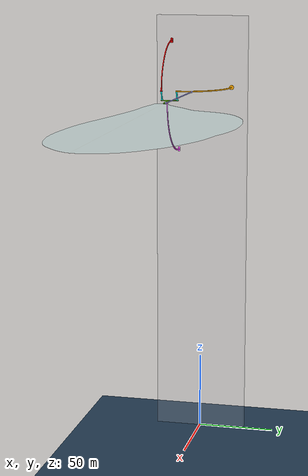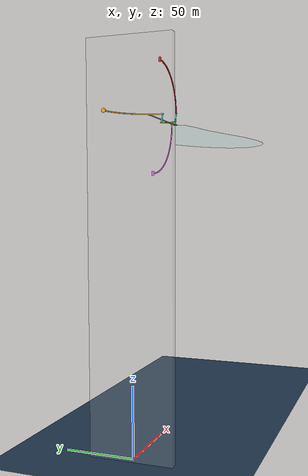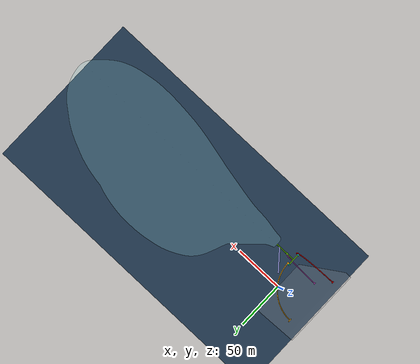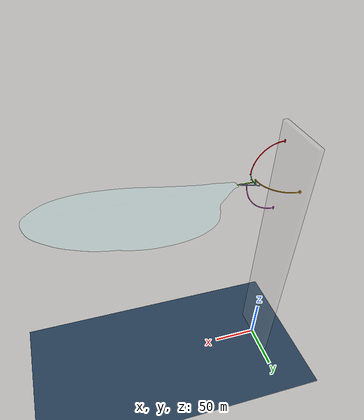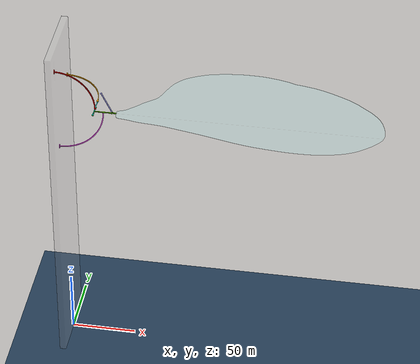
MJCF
<?xml version="1.0" ?>
<mujoco>
  <compiler coordinate="global" angle="radian"/>
  <option gravity="0.0 0.0 -9.81" timestep="0.005"/>
  <asset>
    <mesh file="./mesh_files/mount_plate.stl"/>
    <mesh file="./mesh_files/sla.stl"/>
    <mesh file="./mesh_files/scu.stl"/>
    <mesh file="./mesh_files/pwp.stl"/>
    <mesh file="./mesh_files/mu1.stl"/>
    <mesh file="./mesh_files/mu1.stl"/>
    <mesh file="./mesh_files/ax1_and_vein.stl"/>
    <mesh file="./mesh_files/wing.stl"/>
    <mesh file="./mesh_files/ax34.stl"/>
    <material name="color_0" rgba="1.00 0.33 1.00 1.00"/>
    <material name="color_1" rgba="0.00 1.00 1.00 1.00"/>
    <material name="color_2" rgba="0.80 0.80 0.80 0.20"/>
    <material name="color_3" rgba="0.67 0.67 1.00 1.00"/>
    <material name="color_4" rgba="1.00 0.67 0.00 1.00"/>
    <material name="color_5" rgba="1.00 0.00 0.00 1.00"/>
    <material name="color_6" rgba="0.33 0.67 0.00 1.00"/>
    <material name="color_7" rgba="0.67 1.00 1.00 0.20"/>
    <texture name="grid" type="2d" builtin="checker" width="512" height="512" rgb1="0.1 0.2 0.3" rgb2="0.2 0.3 0.4"/>
    <material name="grid" texture="grid" texrepeat="10 10" texuniform="false" reflectance=".2"/>
  </asset>
  <worldbody>
    <geom name="floor" type="plane" material="grid" condim="3" size="2800.0000000000027 2800.0000000000027 0.05"/>
    <light name="spotlight" mode="targetbodycom" diffuse="0.8 0.8 0.8" specular="0.2 0.2 0.2" pos="368.116807111083 74.96102133503551 420.00000000000045" cutoff="560.0000000000006" target="mount_plate_001"/>
    <body name="mount_plate_001" pos="0.0 0.0 0.0" quat="1.0 0.0 0.0 0.0">
      <geom name="mount_plate_001_mesh" type="mesh" mesh="mount_plate" material="color_2" pos="0.0 0.0 0.0" quat="1.0 0.0 0.0 0.0"/>
      <freejoint name="mount_plate_001_joint"/>
      <body name="sla_001" pos="-0.500000000000266 19.99999999379196 233.72669307513883" quat="6.317222293885728e-09 0.7071067855762254 -0.7071067767968696 6.317220958106056e-09">
        <geom name="sla_001_mesh" type="mesh" mesh="sla" material="color_4" pos="-0.500000000000266 19.99999999379196 233.72669307513883" quat="6.317222293885728e-09 0.7071067855762254 -0.7071067767968696 6.317220958106056e-09"/>
        <joint name="sla_001_joint" type="hinge" pos="-0.500000000000266 19.99999999379196 233.72669307513883" axis="1.0 0.0 0.0" limited="false" springref="0"/>
        <body name="mu1_002" pos="29.497664242383156 -10.005097269695945 233.0351722957893" quat="0.5743397002796597 -0.00014083788730561743 0.8186170527637645 -9.885205160024596e-05">
          <geom name="mu1_002_mesh" type="mesh" mesh="mu1" material="color_1" pos="29.497664242383156 -10.005097269695945 233.0351722957893" quat="0.5743397002796597 -0.00014083788730561743 0.8186170527637645 -9.885205160024596e-05"/>
          <joint name="mu1_002_joint_axis1" type="hinge" pos="29.497664242383156 -10.005097269695945 233.0351722957893" axis="1.0 1.2415884083011619e-08 -2.222044605562574e-15" limited="false" springref="0" stiffness="6.0e9" damping="1.0e7"/>
          <joint name="mu1_002_joint_axis2" type="hinge" pos="29.497664242383156 -10.005097269695945 233.0351722957893" axis="1.2415884003197061e-08 -0.9999999999999998 1.7867801000000004e-08" limited="false" springref="0" stiffness="6.0e9" damping="1.0e7"/>
        </body>
        <body name="ax34_001" pos="30.06773295117326 -0.0004592246760073728 233.7265338562808" quat="0.8901858792560381 -0.0009718179492273054 0.18156317806683878 -0.4178552001750099">
          <geom name="ax34_001_mesh" type="mesh" mesh="ax34" material="color_3" pos="30.06773295117326 -0.0004592246760073728 233.7265338562808" quat="0.8901858792560381 -0.0009718179492273054 0.18156317806683878 -0.4178552001750099"/>
          <joint name="ax34_001_joint_axis1" type="hinge" pos="30.06773295117326 -0.0004592246760073728 233.7265338562808" axis="1.2415884003197061e-08 -0.9999999999999998 1.7867801000000004e-08" limited="false" springref="0"/>
          <joint name="ax34_001_joint_axis2" type="hinge" pos="30.06773295117326 -0.0004592246760073728 233.7265338562808" axis="-1.778155455961102e-15 -1.7867801000000024e-08 -1.0" limited="false" springref="0"/>
        </body>
      </body>
      <body name="scu_001" pos="-0.5000000532372214 -19.999999997908834 263.6691929812606" quat="0.5000000044604502 -0.4999999992360228 0.5000000007639748 0.4999999955395524">
        <geom name="scu_001_mesh" type="mesh" mesh="scu" material="color_5" pos="-0.5000000532372214 -19.999999997908834 263.6691929812606" quat="0.5000000044604502 -0.4999999992360228 0.5000000007639748 0.4999999955395524"/>
        <joint name="scu_001_joint" type="slide" pos="-0.5000000532372214 -19.999999997908834 263.6691929812606" axis="0.0 0.0 1.0" limited="false" springref="0"/>
        <body name="mu1_001" pos="29.499392090101136 -20.0002069746251 233.03428118542766" quat="0.5737853990840083 -0.0034357483493892174 0.8189930591972341 0.0029800030270230983">
          <geom name="mu1_001_mesh" type="mesh" mesh="mu1" material="color_1" pos="29.499392090101136 -20.0002069746251 233.03428118542766" quat="0.5737853990840083 -0.0034357483493892174 0.8189930591972341 0.0029800030270230983"/>
          <joint name="mu1_001_joint_axis1" type="hinge" pos="29.499392090101136 -20.0002069746251 233.03428118542766" axis="1.0 -1.0448849591115916e-08 7.3929458666022185e-09" limited="false" springref="0" stiffness="6.0e9" damping="1.0e7"/>
          <joint name="mu1_001_joint_axis2" type="hinge" pos="29.499392090101136 -20.0002069746251 233.03428118542766" axis="1.0448849840916097e-08 1.0000000000000002 5.079270337660091e-15" limited="false" springref="0" stiffness="6.0e9" damping="1.0e7"/>
        </body>
      </body>
      <body name="pwp_001" pos="-0.4999999470148826 -15.020000000187867 191.96580701923233" quat="0.5000000024124049 0.500000003937422 -0.49999999606258205 0.49999999758759106">
        <geom name="pwp_001_mesh" type="mesh" mesh="pwp" material="color_0" pos="-0.4999999470148826 -15.020000000187867 191.96580701923233" quat="0.5000000024124049 0.500000003937422 -0.49999999606258205 0.49999999758759106"/>
        <body name="ax1_and_vein_001" pos="34.5029564039759 -15.014178670239906 226.96481892288068" quat="0.9999999876351574 -3.0164788816337707e-05 -5.585028804386176e-06 -0.00015423546344463333">
          <geom name="ax1_and_vein_001_mesh" type="mesh" mesh="ax1_and_vein" material="color_6" pos="34.5029564039759 -15.014178670239906 226.96481892288068" quat="0.9999999876351574 -3.0164788816337707e-05 -5.585028804386176e-06 -0.00015423546344463333" density="0.001"/>
          <joint name="ax1_and_vein_001_joint_alpha" type="hinge" pos="34.5029564039759 -15.014178670239906 226.96481892288068" axis="1.0 3.050025926265576e-09 -1.269965427264097e-08" limited="false"/>
          <joint name="ax1_and_vein_001_joint_phi" type="hinge" pos="34.5029564039759 -15.014178670239906 226.96481892288068" axis="-3.0500261205546053e-09 1.0 8.132383655379272e-15" limited="false"/>
          <joint name="ax1_and_vein_001_joint_theta" type="hinge" pos="34.5029564039759 -15.014178670239906 226.96481892288068" axis="1.2699653995085214e-08 -8.215650381887537e-15 1.0" limited="false"/>
          <body name="wing_001" pos="44.50313711938989 -15.009243117874439 227.5289289091552" quat="3.0093377799650303e-05 0.9999999808312401 -0.00019229101378140444 2.135589203494075e-05">
            <geom name="wing_001_mesh" type="mesh" mesh="wing" material="color_7" pos="44.50313711938989 -15.009243117874439 227.5289289091552" quat="3.0093377799650303e-05 0.9999999808312401 -0.00019229101378140444 2.135589203494075e-05" density="0.001"/>
          </body>
        </body>
      </body>
    </body>
  </worldbody>
  <equality>
    <connect body1="mu1_001" body2="ax1_and_vein_001" anchor="27.705795951501493 -20.012013702740227 228.10004458947506" solimp="1.0 1.0 0.001 0.5 2.0"/>
    <connect body1="mu1_002" body2="ax1_and_vein_001" anchor="27.70888066410167 -10.01201419671008 228.0994413109344" solimp="1.0 1.0 0.001 0.5 2.0"/>
    <connect body1="ax34_001" body2="ax1_and_vein_001" anchor="41.30317107442903 -14.298742067655361 227.53235165624176" solimp="1.0 1.0 0.001 0.5 2.0"/>
  </equality>
  <actuator>
    <position name="sla_001_position" joint="sla_001_joint" gear="1" forcelimited="false" ctrllimited="false" kp="6.0e11"/>
    <velocity name="sla_001_velocity" joint="sla_001_joint" gear="1" forcelimited="false" ctrllimited="false" kv="1.0e10"/>
    <position name="scu_001_position" joint="scu_001_joint" gear="1" forcelimited="false" ctrllimited="false" kp="6.0e8"/>
    <velocity name="scu_001_velocity" joint="scu_001_joint" gear="1" forcelimited="false" ctrllimited="false" kv="1.0e8"/>
  </actuator>
</mujoco>
